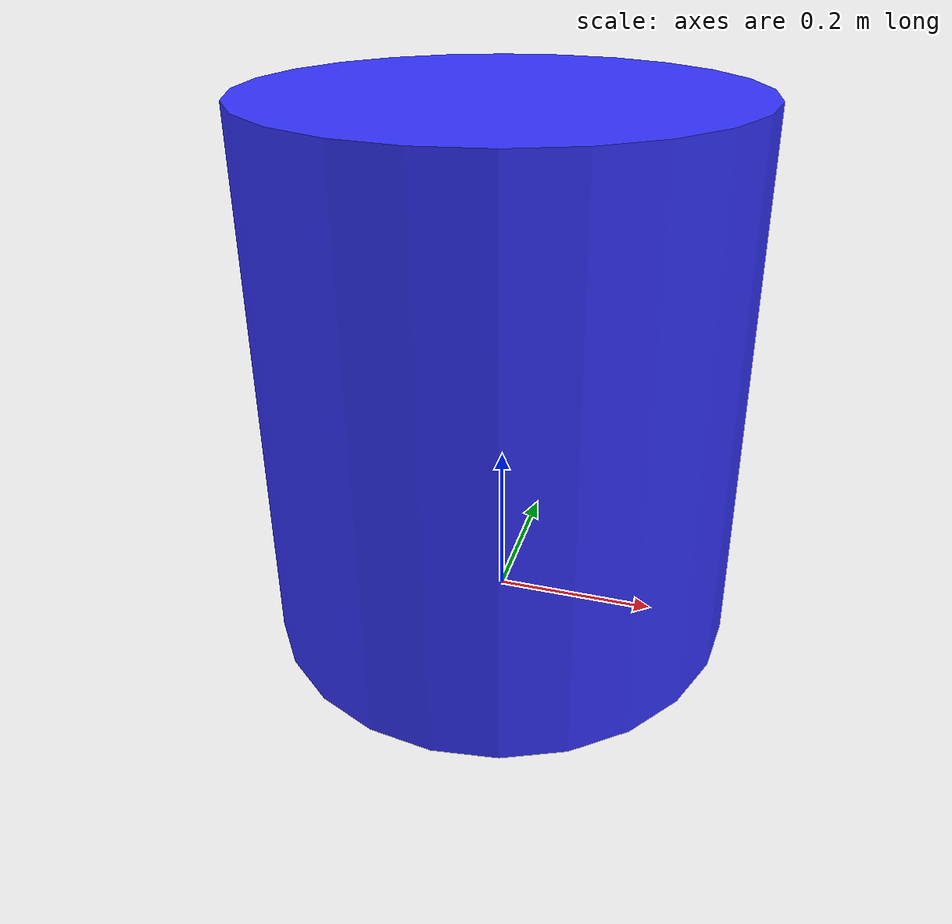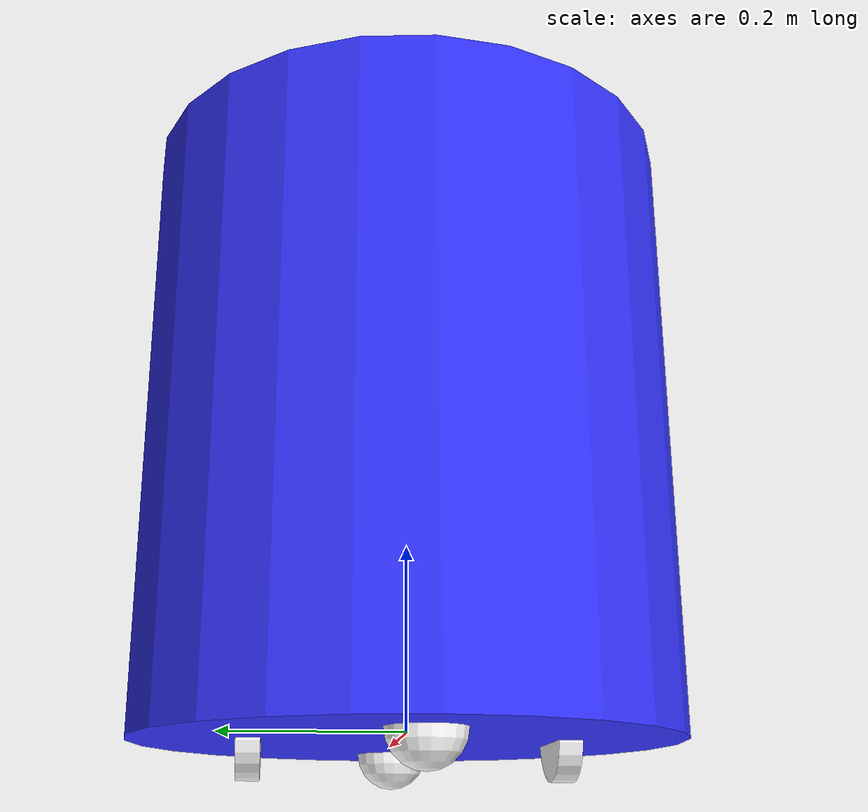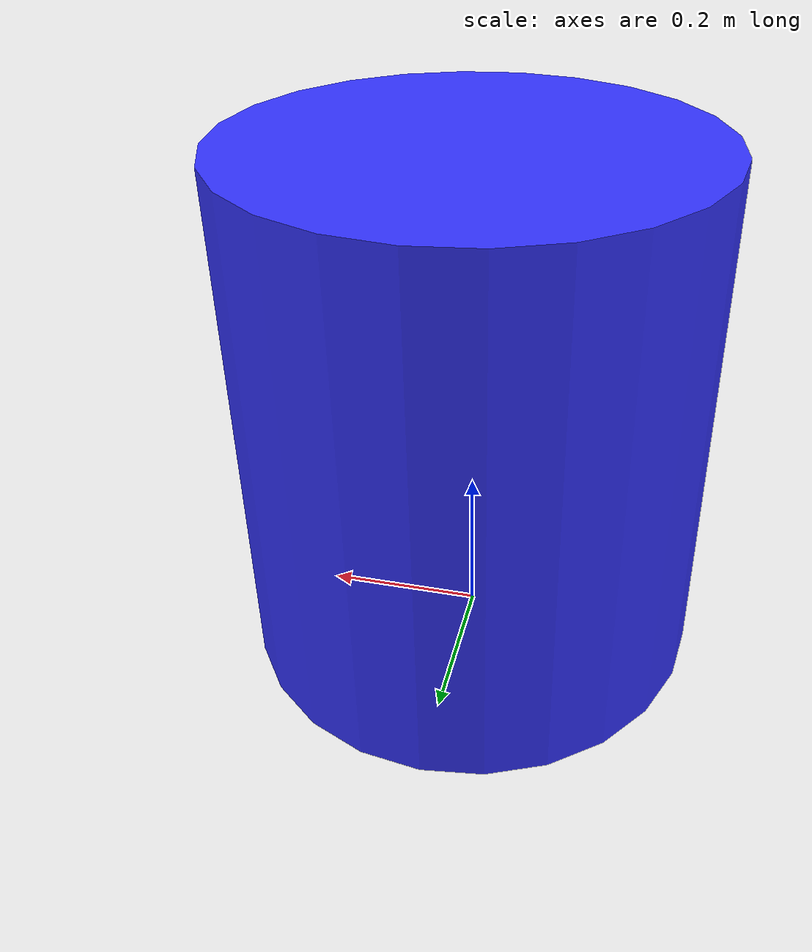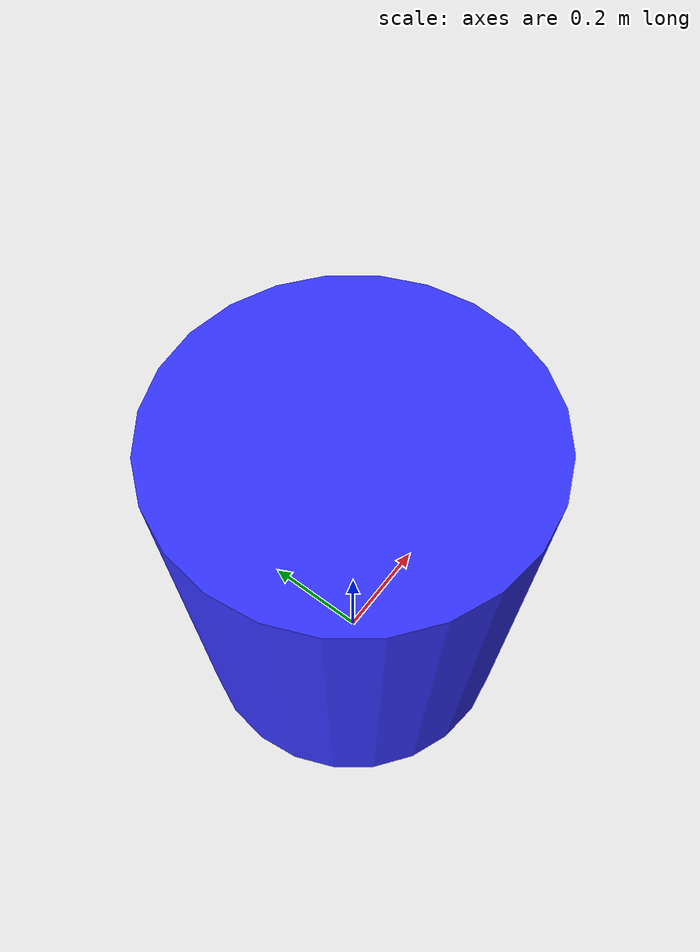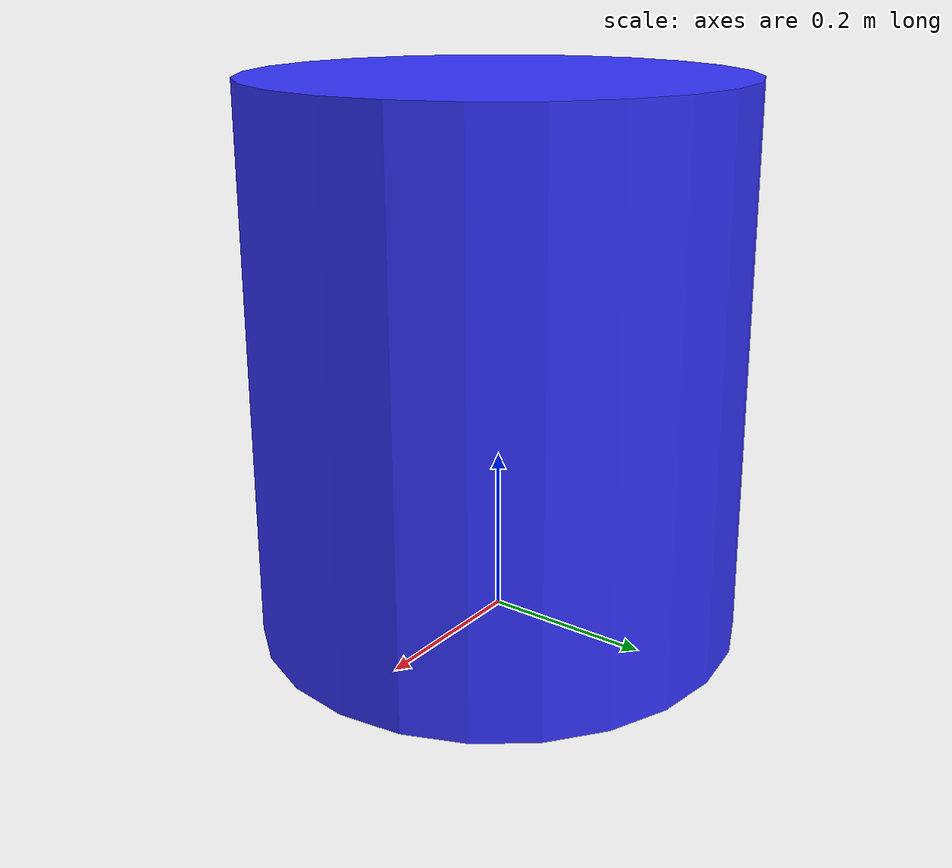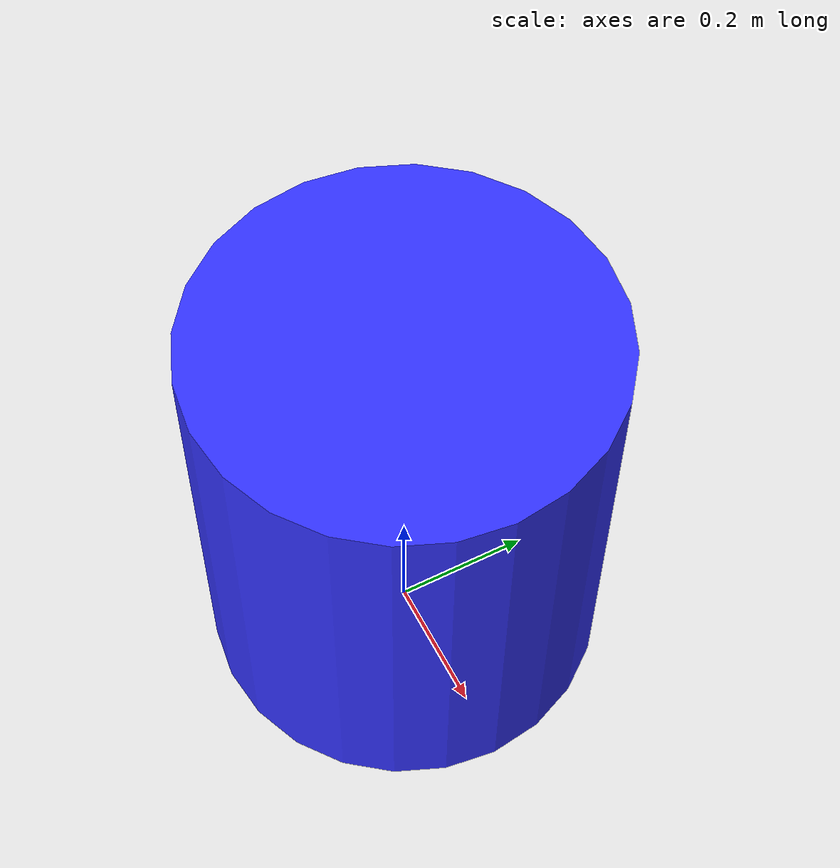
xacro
<?xml version="1.0"?>
<robot xmlns:xacro="http://www.ros.org/wiki/xacro" >

    <xacro:include filename="inertial_macros.xacro"/>

    <xacro:property name="chassis_radius" value="0.292375"/>
    <xacro:property name="chassis_height" value="0.663103892"/>
    <xacro:property name="chassis_mass" value="13.0"/>
    <xacro:property name="wheel_radius" value="0.05"/>
    <xacro:property name="wheel_thickness" value="0.025"/>
    <xacro:property name="wheel_mass" value="0.2494"/>
    <xacro:property name="wheel_offset_x" value="0.0"/>
    <xacro:property name="wheel_offset_y" value="0.165"/>
    <xacro:property name="wheel_offset_z" value="0.01"/>
    <xacro:property name="caster_wheel_radius" value="0.04"/>
    <xacro:property name="caster_wheel_mass" value="0.073417"/>
    <xacro:property name="caster_wheel_offset_x" value="0.1779"/>
    <xacro:property name="caster_wheel_offset_z" value="0"/>

    <material name="white">
        <color rgba="1 1 1 1" />
    </material>

    <material name="orange">
        <color rgba="1 0.3 0.1 1"/>
    </material>

    <material name="blue">
        <color rgba="0.2 0.2 1 1"/>
    </material>

    <material name="black">
        <color rgba="0 0 0 1"/>
    </material>

    <material name="red">
        <color rgba="1 0 0 1"/>
    </material>

    <!-- BASE LINK -->

    <link name="base_link">

    </link>

    <!-- BASE_FOOTPRINT LINK -->

    <joint name="base_footprint_joint" type="fixed">
        <parent link="base_link"/>
        <child link="base_footprint"/>
        <origin xyz="0 0 0" rpy="0 0 0"/>
    </joint>

    <link name="base_footprint">
    </link>

    <!-- CHASSIS LINK -->

    <joint name="chassis_joint" type="fixed">
        <parent link="base_link"/>
        <child link="chassis"/>
        <origin xyz="${-wheel_offset_x} 0 ${-wheel_offset_z}"/>
    </joint>

    <link name="chassis">
    <visual>
        <origin xyz="0 0 ${chassis_height/2}"/>
        <geometry>
            <!-- Change the box geometry to a cylinder -->
            <cylinder radius="${chassis_radius}" length="${chassis_height}"/>
        </geometry>
        <material name="blue"/>
    </visual>
    <collision>
        <origin xyz="0 0 ${chassis_height/2}"/>
        <geometry>
            <!-- Change the box collision geometry to a cylinder -->
            <cylinder radius="${chassis_radius}" length="${chassis_height}"/>
        </geometry>
    </collision>
    <!-- Use xacro:inertial_cylinder for inertial properties -->
    <xacro:inertial_cylinder mass="13.0" radius="${chassis_radius}" length="${chassis_height}">
        <origin xyz="0 0 ${chassis_height/2}" rpy="0 0 0"/>
    </xacro:inertial_cylinder>
</link>

    <gazebo reference="chassis">
        <material>Gazebo/blue</material>
    </gazebo>

    <!-- LEFT WHEEL LINK -->

    <joint name="left_wheel_joint" type="continuous">
        <parent link="base_link"/>
        <child link="left_wheel"/>
        <origin xyz="0 ${wheel_offset_y} 0" rpy="-${pi/2} 0 0" />
        <axis xyz="0 0 1"/>
    </joint>

    <link name="left_wheel">
        <visual>
            <geometry>
                <cylinder radius="${wheel_radius}" length="${wheel_thickness}"/>
            </geometry>
            <material name="white"/>
        </visual>
        <collision>
            <geometry>
                <cylinder radius="${wheel_radius}" length="${wheel_thickness}"/>
            </geometry>
        </collision>
        <xacro:inertial_cylinder mass="${wheel_mass}" length="${wheel_thickness}" radius="${wheel_radius}">
            <origin xyz="0 0 0" rpy="0 0 0"/>
        </xacro:inertial_cylinder>
    </link>

    <gazebo reference="left_wheel">
        <material>Gazebo/Blue</material>
    </gazebo>

    <!-- RIGHT WHEEL LINK -->

    <joint name="right_wheel_joint" type="continuous">
        <parent link="base_link"/>
        <child link="right_wheel"/>
        <origin xyz="0 ${-wheel_offset_y} 0" rpy="${pi/2} 0 0" />
        <axis xyz="0 0 -1"/>
    </joint>

    <link name="right_wheel">
        <visual>
            <geometry>
                <cylinder radius="${wheel_radius}" length="${wheel_thickness}"/>
            </geometry>
            <material name="white"/>
        </visual>
        <collision>
            <geometry>
                <cylinder radius="${wheel_radius}" length="${wheel_thickness}"/>
            </geometry>
        </collision>
        <xacro:inertial_cylinder mass="${wheel_mass}" length="${wheel_thickness}" radius="${wheel_radius}">
            <origin xyz="0 0 0" rpy="0 0 0"/>
        </xacro:inertial_cylinder>
    </link>

    <gazebo reference="right_wheel">
        <material>Gazebo/Blue</material>
    </gazebo>

    <!-- CASTER WHEEL LINK FORWARD-->

    <joint name="caster_wheel_joint_forward" type="fixed">
        <parent link="chassis"/>
        <child link="caster_wheel_forward"/>
        <origin xyz="${caster_wheel_offset_x} 0 ${caster_wheel_offset_z}"/>
    </joint>

    <link name="caster_wheel_forward">
        <visual>
            <geometry>
                <sphere radius="${caster_wheel_radius}"/>
            </geometry>
            <material name="white"/>
        </visual>
        <collision>
            <geometry>
                <sphere radius="${caster_wheel_radius}"/>
            </geometry>
        </collision>
        <xacro:inertial_sphere mass="${caster_wheel_mass}" radius="${caster_wheel_radius}">
            <origin xyz="0 0 0" rpy="0 0 0"/>
        </xacro:inertial_sphere>
    </link>

    <gazebo reference="caster_wheel_forward">
        <material>Gazebo/White</material>
        <mu1 value="0.002"/>
        <mu2 value="0.002"/>
    </gazebo>
   <!-- CASTER WHEEL LINK BACKWARD-->

    <joint name="caster_wheel_joint_backward" type="fixed">
        <parent link="chassis"/>
        <child link="caster_wheel_backward"/>
        <origin xyz="${-caster_wheel_offset_x} 0 ${caster_wheel_offset_z}"/>
    </joint>

    <link name="caster_wheel_backward">
        <visual>
            <geometry>
                <sphere radius="${caster_wheel_radius}"/>
            </geometry>
            <material name="white"/>
        </visual>
        <collision>
            <geometry>
                <sphere radius="${caster_wheel_radius}"/>
            </geometry>
        </collision>
        <xacro:inertial_sphere mass="${caster_wheel_mass}" radius="${caster_wheel_radius}">
            <origin xyz="0 0 0" rpy="0 0 0"/>
        </xacro:inertial_sphere>
    </link>

    <gazebo reference="caster_wheel_backward">
        <material>Gazebo/White</material>
        <mu1 value="0.002"/>
        <mu2 value="0.002"/>
    </gazebo>

</robot>
